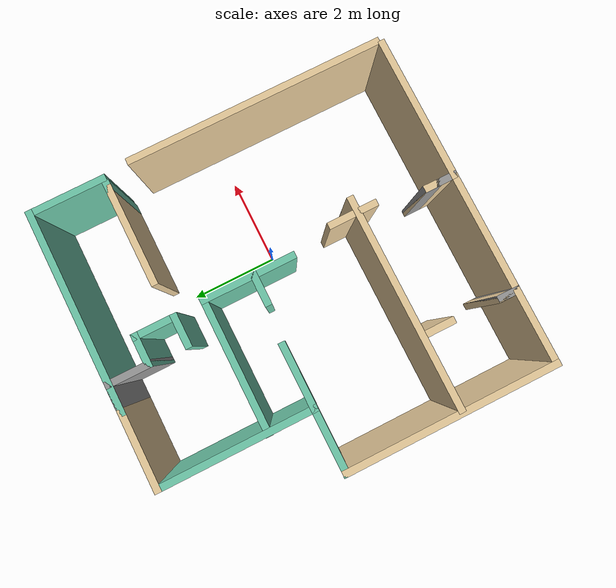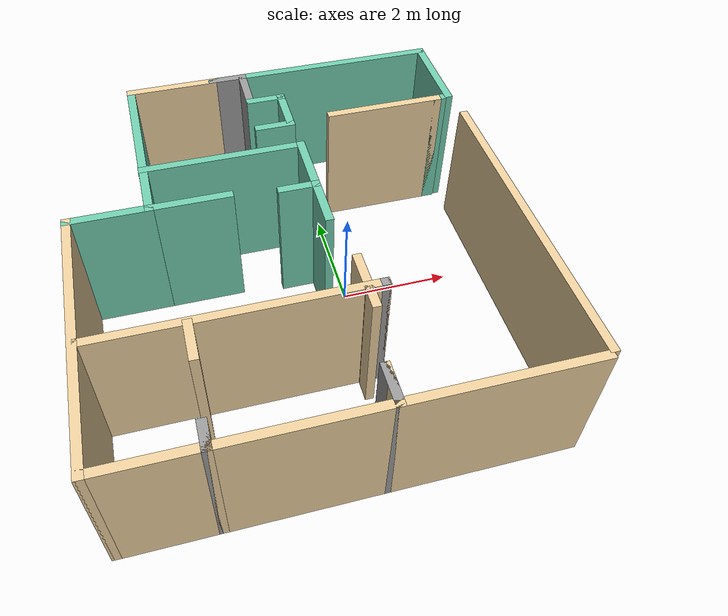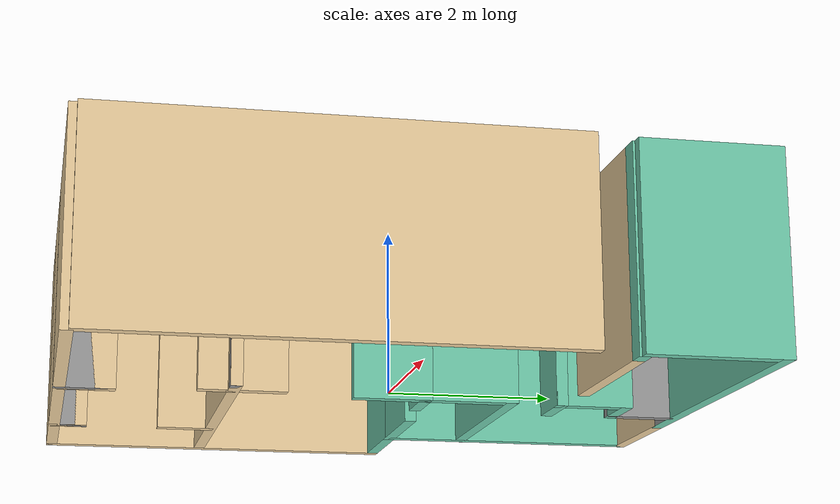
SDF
<?xml version='1.0'?>
<sdf version='1.6'>
  <model name='floor'>
    <pose frame=''>-0.912177 0.033088 0 0 -0 0</pose>
    <link name='Wall_0'>
      <collision name='Wall_0_Collision'>
        <geometry>
          <box>
            <size>1.75 0.15 2.5</size>
          </box>
        </geometry>
        <pose frame=''>0 0 1.25 0 -0 0</pose>
      </collision>
      <visual name='Wall_0_Visual'>
        <pose frame=''>0 0 1.25 0 -0 0</pose>
        <geometry>
          <box>
            <size>1.75 0.15 2.5</size>
          </box>
        </geometry>
        <material>
          <script>
            <uri>file://media/materials/scripts/gazebo.material</uri>
            <name>Gazebo/Grey</name>
          </script>
          <ambient>0.921569 0.807843 0.615686 1</ambient>
        </material>
      </visual>
      <pose frame=''>-1.54755 3.975 0 0 -0 3.14159</pose>
    </link>
    <link name='Wall_1'>
      <collision name='Wall_1_Collision'>
        <geometry>
          <box>
            <size>3.5 0.15 2.5</size>
          </box>
        </geometry>
        <pose frame=''>0 0 1.25 0 -0 0</pose>
      </collision>
      <visual name='Wall_1_Visual'>
        <pose frame=''>0 0 1.25 0 -0 0</pose>
        <geometry>
          <box>
            <size>3.5 0.15 2.5</size>
          </box>
        </geometry>
        <material>
          <script>
            <uri>file://media/materials/scripts/gazebo.material</uri>
            <name>Gazebo/Grey</name>
          </script>
          <ambient>0.435294 0.796078 0.67451 1</ambient>
        </material>
      </visual>
      <pose frame=''>-2.34755 2.3 0 0 0 -1.5708</pose>
    </link>
    <link name='Wall_10'>
      <collision name='Wall_10_Collision'>
        <geometry>
          <box>
            <size>3.25 0.15 2.5</size>
          </box>
        </geometry>
        <pose frame=''>0 0 1.25 0 -0 0</pose>
      </collision>
      <visual name='Wall_10_Visual'>
        <pose frame=''>0 0 1.25 0 -0 0</pose>
        <geometry>
          <box>
            <size>3.25 0.15 2.5</size>
          </box>
        </geometry>
        <material>
          <script>
            <uri>file://media/materials/scripts/gazebo.material</uri>
            <name>Gazebo/Grey</name>
          </script>
          <ambient>0.921569 0.807843 0.615686 1</ambient>
        </material>
      </visual>
      <pose frame=''>2.05245 -3.975 0 0 -0 0</pose>
    </link>
    <link name='Wall_13'>
      <collision name='Wall_13_Collision'>
        <geometry>
          <box>
            <size>4.5 0.15 2.5</size>
          </box>
        </geometry>
        <pose frame=''>0 0 1.25 0 -0 0</pose>
      </collision>
      <visual name='Wall_13_Visual'>
        <pose frame=''>0 0 1.25 0 -0 0</pose>
        <geometry>
          <box>
            <size>4.5 0.15 2.5</size>
          </box>
        </geometry>
        <material>
          <script>
            <uri>file://media/materials/scripts/gazebo.material</uri>
            <name>Gazebo/Grey</name>
          </script>
          <ambient>0.435294 0.796078 0.67451 1</ambient>
        </material>
      </visual>
      <pose frame=''>1.42745 3.975 0 0 -0 3.14159</pose>
    </link>
    <link name='Wall_14'>
      <collision name='Wall_14_Collision'>
        <geometry>
          <box>
            <size>0.75 0.15 2.5</size>
          </box>
        </geometry>
        <pose frame=''>0 0 1.25 0 -0 0</pose>
      </collision>
      <visual name='Wall_14_Visual'>
        <pose frame=''>0 0 1.25 0 -0 0</pose>
        <geometry>
          <box>
            <size>0.75 0.15 2.5</size>
          </box>
        </geometry>
        <material>
          <script>
            <uri>file://media/materials/scripts/gazebo.material</uri>
            <name>Gazebo/Grey</name>
          </script>
          <ambient>1 1 1 1</ambient>
        </material>
      </visual>
      <pose frame=''>-0.44755 3.975 0 0 -0 0</pose>
    </link>
    <link name='Wall_15'>
      <collision name='Wall_15_Collision'>
        <geometry>
          <box>
            <size>1 0.15 2.5</size>
          </box>
        </geometry>
        <pose frame=''>0 0 1.25 0 -0 0</pose>
      </collision>
      <visual name='Wall_15_Visual'>
        <pose frame=''>0 0 1.25 0 -0 0</pose>
        <geometry>
          <box>
            <size>1 0.15 2.5</size>
          </box>
        </geometry>
        <material>
          <script>
            <uri>file://media/materials/scripts/gazebo.material</uri>
            <name>Gazebo/Grey</name>
          </script>
          <ambient>1 1 1 1</ambient>
        </material>
      </visual>
      <pose frame=''>-0.14755 3.55 0 0 0 -1.5708</pose>
    </link>
    <link name='Wall_16'>
      <collision name='Wall_16_Collision'>
        <geometry>
          <box>
            <size>0.75 0.15 2.5</size>
          </box>
        </geometry>
        <pose frame=''>0 0 1.25 0 -0 0</pose>
      </collision>
      <visual name='Wall_16_Visual'>
        <pose frame=''>0 0 1.25 0 -0 0</pose>
        <geometry>
          <box>
            <size>0.75 0.15 2.5</size>
          </box>
        </geometry>
        <material>
          <script>
            <uri>file://media/materials/scripts/gazebo.material</uri>
            <name>Gazebo/Grey</name>
          </script>
          <ambient>0.435294 0.796078 0.67451 1</ambient>
        </material>
      </visual>
      <pose frame=''>0.15245 3.125 0 0 -0 0</pose>
    </link>
    <link name='Wall_17'>
      <collision name='Wall_17_Collision'>
        <geometry>
          <box>
            <size>1 0.15 2.5</size>
          </box>
        </geometry>
        <pose frame=''>0 0 1.25 0 -0 0</pose>
      </collision>
      <visual name='Wall_17_Visual'>
        <pose frame=''>0 0 1.25 0 -0 0</pose>
        <geometry>
          <box>
            <size>1 0.15 2.5</size>
          </box>
        </geometry>
        <material>
          <script>
            <uri>file://media/materials/scripts/gazebo.material</uri>
            <name>Gazebo/Grey</name>
          </script>
          <ambient>0.435294 0.796078 0.67451 1</ambient>
        </material>
      </visual>
      <pose frame=''>0.45245 2.7 0 0 0 -1.5708</pose>
    </link>
    <link name='Wall_18'>
      <collision name='Wall_18_Collision'>
        <geometry>
          <box>
            <size>0.75 0.15 2.5</size>
          </box>
        </geometry>
        <pose frame=''>0 0 1.25 0 -0 0</pose>
      </collision>
      <visual name='Wall_18_Visual'>
        <pose frame=''>0 0 1.25 0 -0 0</pose>
        <geometry>
          <box>
            <size>0.75 0.15 2.5</size>
          </box>
        </geometry>
        <material>
          <script>
            <uri>file://media/materials/scripts/gazebo.material</uri>
            <name>Gazebo/Grey</name>
          </script>
          <ambient>0.435294 0.796078 0.67451 1</ambient>
        </material>
      </visual>
      <pose frame=''>0.15245 2.275 0 0 -0 3.14159</pose>
    </link>
    <link name='Wall_2'>
      <collision name='Wall_2_Collision'>
        <geometry>
          <box>
            <size>1.5 0.15 2.5</size>
          </box>
        </geometry>
        <pose frame=''>0 0 1.25 0 -0 0</pose>
      </collision>
      <visual name='Wall_2_Visual'>
        <pose frame=''>0 0 1.25 0 -0 0</pose>
        <geometry>
          <box>
            <size>1.5 0.15 2.5</size>
          </box>
        </geometry>
        <material>
          <script>
            <uri>file://media/materials/scripts/gazebo.material</uri>
            <name>Gazebo/Grey</name>
          </script>
          <ambient>0.435294 0.796078 0.67451 1</ambient>
        </material>
      </visual>
      <pose frame=''>-3.02255 0.625 0 0 -0 3.14159</pose>
    </link>
    <link name='Wall_20'>
      <collision name='Wall_20_Collision'>
        <geometry>
          <box>
            <size>3 0.15 2.5</size>
          </box>
        </geometry>
        <pose frame=''>0 0 1.25 0 -0 0</pose>
      </collision>
      <visual name='Wall_20_Visual'>
        <pose frame=''>0 0 1.25 0 -0 0</pose>
        <geometry>
          <box>
            <size>3 0.15 2.5</size>
          </box>
        </geometry>
        <material>
          <script>
            <uri>file://media/materials/scripts/gazebo.material</uri>
            <name>Gazebo/Grey</name>
          </script>
          <ambient>0.435294 0.796078 0.67451 1</ambient>
        </material>
      </visual>
      <pose frame=''>-0.931635 1.62171 0 0 -0 0</pose>
    </link>
    <link name='Wall_21'>
      <collision name='Wall_21_Collision'>
        <geometry>
          <box>
            <size>1.25 0.15 2.5</size>
          </box>
        </geometry>
        <pose frame=''>0 0 1.25 0 -0 0</pose>
      </collision>
      <visual name='Wall_21_Visual'>
        <pose frame=''>0 0 1.25 0 -0 0</pose>
        <geometry>
          <box>
            <size>1.25 0.15 2.5</size>
          </box>
        </geometry>
        <material>
          <script>
            <uri>file://media/materials/scripts/gazebo.material</uri>
            <name>Gazebo/Grey</name>
          </script>
          <ambient>0.435294 0.796078 0.67451 1</ambient>
        </material>
      </visual>
      <pose frame=''>0.493365 1.07171 0 0 0 -1.5708</pose>
    </link>
    <link name='Wall_22'>
      <collision name='Wall_22_Collision'>
        <geometry>
          <box>
            <size>0.75 0.15 2.5</size>
          </box>
        </geometry>
        <pose frame=''>0 0 1.25 0 -0 0</pose>
      </collision>
      <visual name='Wall_22_Visual'>
        <pose frame=''>0 0 1.25 0 -0 0</pose>
        <geometry>
          <box>
            <size>0.75 0.15 2.5</size>
          </box>
        </geometry>
        <material>
          <script>
            <uri>file://media/materials/scripts/gazebo.material</uri>
            <name>Gazebo/Grey</name>
          </script>
          <ambient>0.435294 0.796078 0.67451 1</ambient>
        </material>
      </visual>
      <pose frame=''>0.193365 0.521712 0 0 -0 3.14159</pose>
    </link>
    <link name='Wall_24'>
      <collision name='Wall_24_Collision'>
        <geometry>
          <box>
            <size>1.5 0.15 2.5</size>
          </box>
        </geometry>
        <pose frame=''>0 0 1.25 0 -0 0</pose>
      </collision>
      <visual name='Wall_24_Visual'>
        <pose frame=''>0 0 1.25 0 -0 0</pose>
        <geometry>
          <box>
            <size>1.5 0.15 2.5</size>
          </box>
        </geometry>
        <material>
          <script>
            <uri>file://media/materials/scripts/gazebo.material</uri>
            <name>Gazebo/Grey</name>
          </script>
          <ambient>0.435294 0.796078 0.67451 1</ambient>
        </material>
      </visual>
      <pose frame=''>-1.67255 0.625 0 0 -0 0</pose>
    </link>
    <link name='Wall_26'>
      <collision name='Wall_26_Collision'>
        <geometry>
          <box>
            <size>1 0.15 2.5</size>
          </box>
        </geometry>
        <pose frame=''>0 0 1.25 0 -0 0</pose>
      </collision>
      <visual name='Wall_26_Visual'>
        <pose frame=''>0 0 1.25 0 -0 0</pose>
        <geometry>
          <box>
            <size>1 0.15 2.5</size>
          </box>
        </geometry>
        <material>
          <script>
            <uri>file://media/materials/scripts/gazebo.material</uri>
            <name>Gazebo/Grey</name>
          </script>
          <ambient>0.435294 0.796078 0.67451 1</ambient>
        </material>
      </visual>
      <pose frame=''>0.493365 0.096712 0 0 0 -1.5708</pose>
    </link>
    <link name='Wall_28'>
      <collision name='Wall_28_Collision'>
        <geometry>
          <box>
            <size>4.75 0.15 2.5</size>
          </box>
        </geometry>
        <pose frame=''>0 0 1.25 0 -0 0</pose>
      </collision>
      <visual name='Wall_28_Visual'>
        <pose frame=''>0 0 1.25 0 -0 0</pose>
        <geometry>
          <box>
            <size>4.75 0.15 2.5</size>
          </box>
        </geometry>
        <material>
          <script>
            <uri>file://media/materials/scripts/gazebo.material</uri>
            <name>Gazebo/Grey</name>
          </script>
          <ambient>0.921569 0.807843 0.615686 1</ambient>
        </material>
      </visual>
      <pose frame=''>-1.32379 -1.89816 0 0 -0 0</pose>
    </link>
    <link name='Wall_29'>
      <collision name='Wall_29_Collision'>
        <geometry>
          <box>
            <size>0.15 0.15 2.5</size>
          </box>
        </geometry>
        <pose frame=''>0 0 1.25 0 -0 0</pose>
      </collision>
      <visual name='Wall_29_Visual'>
        <pose frame=''>0 0 1.25 0 -0 0</pose>
        <geometry>
          <box>
            <size>0.15 0.15 2.5</size>
          </box>
        </geometry>
        <material>
          <script>
            <uri>file://media/materials/scripts/gazebo.material</uri>
            <name>Gazebo/Grey</name>
          </script>
          <ambient>1 1 1 1</ambient>
        </material>
      </visual>
      <pose frame=''>0.97621 -1.89816 0 0 -0 0</pose>
    </link>
    <link name='Wall_3'>
      <collision name='Wall_3_Collision'>
        <geometry>
          <box>
            <size>4.75 0.15 2.5</size>
          </box>
        </geometry>
        <pose frame=''>0 0 1.25 0 -0 0</pose>
      </collision>
      <visual name='Wall_3_Visual'>
        <pose frame=''>0 0 1.25 0 -0 0</pose>
        <geometry>
          <box>
            <size>4.75 0.15 2.5</size>
          </box>
        </geometry>
        <material>
          <script>
            <uri>file://media/materials/scripts/gazebo.material</uri>
            <name>Gazebo/Grey</name>
          </script>
          <ambient>0.921569 0.807843 0.615686 1</ambient>
        </material>
      </visual>
      <pose frame=''>-3.69755 -1.675 0 0 0 -1.5708</pose>
    </link>
    <link name='Wall_31'>
      <collision name='Wall_31_Collision'>
        <geometry>
          <box>
            <size>0.75 0.15 2.5</size>
          </box>
        </geometry>
        <pose frame=''>0 0 1.25 0 -0 0</pose>
      </collision>
      <visual name='Wall_31_Visual'>
        <pose frame=''>0 0 1.25 0 -0 0</pose>
        <geometry>
          <box>
            <size>0.75 0.15 2.5</size>
          </box>
        </geometry>
        <material>
          <script>
            <uri>file://media/materials/scripts/gazebo.material</uri>
            <name>Gazebo/Grey</name>
          </script>
          <ambient>0.921569 0.807843 0.615686 1</ambient>
        </material>
      </visual>
      <pose frame=''>0.700628 -1.61487 0 0 0 -1.5708</pose>
    </link>
    <link name='Wall_32'>
      <collision name='Wall_32_Collision'>
        <geometry>
          <box>
            <size>0.5 0.15 2.5</size>
          </box>
        </geometry>
        <pose frame=''>0 0 1.25 0 -0 0</pose>
      </collision>
      <visual name='Wall_32_Visual'>
        <pose frame=''>0 0 1.25 0 -0 0</pose>
        <geometry>
          <box>
            <size>0.5 0.15 2.5</size>
          </box>
        </geometry>
        <material>
          <script>
            <uri>file://media/materials/scripts/gazebo.material</uri>
            <name>Gazebo/Grey</name>
          </script>
          <ambient>0.921569 0.807843 0.615686 1</ambient>
        </material>
      </visual>
      <pose frame=''>0.700628 -2.08987 0 0 0 -1.5708</pose>
    </link>
    <link name='Wall_34'>
      <collision name='Wall_34_Collision'>
        <geometry>
          <box>
            <size>2.25 0.15 2.5</size>
          </box>
        </geometry>
        <pose frame=''>0 0 1.25 0 -0 0</pose>
      </collision>
      <visual name='Wall_34_Visual'>
        <pose frame=''>0 0 1.25 0 -0 0</pose>
        <geometry>
          <box>
            <size>2.25 0.15 2.5</size>
          </box>
        </geometry>
        <material>
          <script>
            <uri>file://media/materials/scripts/gazebo.material</uri>
            <name>Gazebo/Grey</name>
          </script>
          <ambient>0.921569 0.807843 0.615686 1</ambient>
        </material>
      </visual>
      <pose frame=''>2.31381 2.3458 0 0 -0 0</pose>
    </link>
    <link name='Wall_35'>
      <collision name='Wall_35_Collision'>
        <geometry>
          <box>
            <size>0.25 0.15 2.5</size>
          </box>
        </geometry>
        <pose frame=''>0 0 1.25 0 -0 0</pose>
      </collision>
      <visual name='Wall_35_Visual'>
        <pose frame=''>0 0 1.25 0 -0 0</pose>
        <geometry>
          <box>
            <size>0.25 0.15 2.5</size>
          </box>
        </geometry>
        <material>
          <script>
            <uri>file://media/materials/scripts/gazebo.material</uri>
            <name>Gazebo/Grey</name>
          </script>
          <ambient>0.435294 0.796078 0.67451 1</ambient>
        </material>
      </visual>
      <pose frame=''>3.41381 2.3458 0 0 -0 0</pose>
    </link>
    <link name='Wall_37'>
      <collision name='Wall_37_Collision'>
        <geometry>
          <box>
            <size>1.75 0.15 2.5</size>
          </box>
        </geometry>
        <pose frame=''>0 0 1.25 0 -0 0</pose>
      </collision>
      <visual name='Wall_37_Visual'>
        <pose frame=''>0 0 1.25 0 -0 0</pose>
        <geometry>
          <box>
            <size>1.75 0.15 2.5</size>
          </box>
        </geometry>
        <material>
          <script>
            <uri>file://media/materials/scripts/gazebo.material</uri>
            <name>Gazebo/Grey</name>
          </script>
          <ambient>0.435294 0.796078 0.67451 1</ambient>
        </material>
      </visual>
      <pose frame=''>3.60245 3.175 0 0 0 -1.5708</pose>
    </link>
    <link name='Wall_39'>
      <collision name='Wall_39_Collision'>
        <geometry>
          <box>
            <size>5.75 0.15 2.5</size>
          </box>
        </geometry>
        <pose frame=''>0 0 1.25 0 -0 0</pose>
      </collision>
      <visual name='Wall_39_Visual'>
        <pose frame=''>0 0 1.25 0 -0 0</pose>
        <geometry>
          <box>
            <size>5.75 0.15 2.5</size>
          </box>
        </geometry>
        <material>
          <script>
            <uri>file://media/materials/scripts/gazebo.material</uri>
            <name>Gazebo/Grey</name>
          </script>
          <ambient>0.921569 0.807843 0.615686 1</ambient>
        </material>
      </visual>
      <pose frame=''>3.69755 -1.07772 0 0 0 -1.5708</pose>
    </link>
    <link name='Wall_4'>
      <collision name='Wall_4_Collision'>
        <geometry>
          <box>
            <size>1.75 0.15 2.5</size>
          </box>
        </geometry>
        <pose frame=''>0 0 1.25 0 -0 0</pose>
      </collision>
      <visual name='Wall_4_Visual'>
        <pose frame=''>0 0 1.25 0 -0 0</pose>
        <geometry>
          <box>
            <size>1.75 0.15 2.5</size>
          </box>
        </geometry>
        <material>
          <script>
            <uri>file://media/materials/scripts/gazebo.material</uri>
            <name>Gazebo/Grey</name>
          </script>
          <ambient>0.921569 0.807843 0.615686 1</ambient>
        </material>
      </visual>
      <pose frame=''>-2.89755 -3.975 0 0 -0 0</pose>
    </link>
    <link name='Wall_41'>
      <collision name='Wall_41_Collision'>
        <geometry>
          <box>
            <size>0.75 0.15 2.5</size>
          </box>
        </geometry>
        <pose frame=''>0 0 1.25 0 -0 0</pose>
      </collision>
      <visual name='Wall_41_Visual'>
        <pose frame=''>0 0 1.25 0 -0 0</pose>
        <geometry>
          <box>
            <size>0.75 0.15 2.5</size>
          </box>
        </geometry>
        <material>
          <script>
            <uri>file://media/materials/scripts/gazebo.material</uri>
            <name>Gazebo/Grey</name>
          </script>
          <ambient>0.921569 0.807843 0.615686 1</ambient>
        </material>
      </visual>
      <pose frame=''>-2.05493 -2.23839 0 0 0 -1.5708</pose>
    </link>
    <link name='Wall_5'>
      <collision name='Wall_5_Collision'>
        <geometry>
          <box>
            <size>0.5 0.15 2.5</size>
          </box>
        </geometry>
        <pose frame=''>0 0 1.25 0 -0 0</pose>
      </collision>
      <visual name='Wall_5_Visual'>
        <pose frame=''>0 0 1.25 0 -0 0</pose>
        <geometry>
          <box>
            <size>0.5 0.15 2.5</size>
          </box>
        </geometry>
        <material>
          <script>
            <uri>file://media/materials/scripts/gazebo.material</uri>
            <name>Gazebo/Grey</name>
          </script>
          <ambient>1 1 1 1</ambient>
        </material>
      </visual>
      <pose frame=''>-2.09755 -3.8 0 0 -0 1.5708</pose>
    </link>
    <link name='Wall_6'>
      <collision name='Wall_6_Collision'>
        <geometry>
          <box>
            <size>0.5 0.15 2.5</size>
          </box>
        </geometry>
        <pose frame=''>0 0 1.25 0 -0 0</pose>
      </collision>
      <visual name='Wall_6_Visual'>
        <pose frame=''>0 0 1.25 0 -0 0</pose>
        <geometry>
          <box>
            <size>0.5 0.15 2.5</size>
          </box>
        </geometry>
        <material>
          <script>
            <uri>file://media/materials/scripts/gazebo.material</uri>
            <name>Gazebo/Grey</name>
          </script>
          <ambient>0.921569 0.807843 0.615686 1</ambient>
        </material>
      </visual>
      <pose frame=''>-2.09755 -3.8 0 0 0 -1.5708</pose>
    </link>
    <link name='Wall_7'>
      <collision name='Wall_7_Collision'>
        <geometry>
          <box>
            <size>2.75 0.15 2.5</size>
          </box>
        </geometry>
        <pose frame=''>0 0 1.25 0 -0 0</pose>
      </collision>
      <visual name='Wall_7_Visual'>
        <pose frame=''>0 0 1.25 0 -0 0</pose>
        <geometry>
          <box>
            <size>2.75 0.15 2.5</size>
          </box>
        </geometry>
        <material>
          <script>
            <uri>file://media/materials/scripts/gazebo.material</uri>
            <name>Gazebo/Grey</name>
          </script>
          <ambient>0.921569 0.807843 0.615686 1</ambient>
        </material>
      </visual>
      <pose frame=''>-0.79755 -3.975 0 0 -0 0</pose>
    </link>
    <link name='Wall_8'>
      <collision name='Wall_8_Collision'>
        <geometry>
          <box>
            <size>0.75 0.15 2.5</size>
          </box>
        </geometry>
        <pose frame=''>0 0 1.25 0 -0 0</pose>
      </collision>
      <visual name='Wall_8_Visual'>
        <pose frame=''>0 0 1.25 0 -0 0</pose>
        <geometry>
          <box>
            <size>0.75 0.15 2.5</size>
          </box>
        </geometry>
        <material>
          <script>
            <uri>file://media/materials/scripts/gazebo.material</uri>
            <name>Gazebo/Grey</name>
          </script>
          <ambient>1 1 1 1</ambient>
        </material>
      </visual>
      <pose frame=''>0.50245 -3.675 0 0 -0 1.5708</pose>
    </link>
    <link name='Wall_9'>
      <collision name='Wall_9_Collision'>
        <geometry>
          <box>
            <size>0.75 0.15 2.5</size>
          </box>
        </geometry>
        <pose frame=''>0 0 1.25 0 -0 0</pose>
      </collision>
      <visual name='Wall_9_Visual'>
        <pose frame=''>0 0 1.25 0 -0 0</pose>
        <geometry>
          <box>
            <size>0.75 0.15 2.5</size>
          </box>
        </geometry>
        <material>
          <script>
            <uri>file://media/materials/scripts/gazebo.material</uri>
            <name>Gazebo/Grey</name>
          </script>
          <ambient>0.921569 0.807843 0.615686 1</ambient>
        </material>
      </visual>
      <pose frame=''>0.50245 -3.675 0 0 0 -1.5708</pose>
    </link>
    <static>1</static>
  </model>
</sdf>
